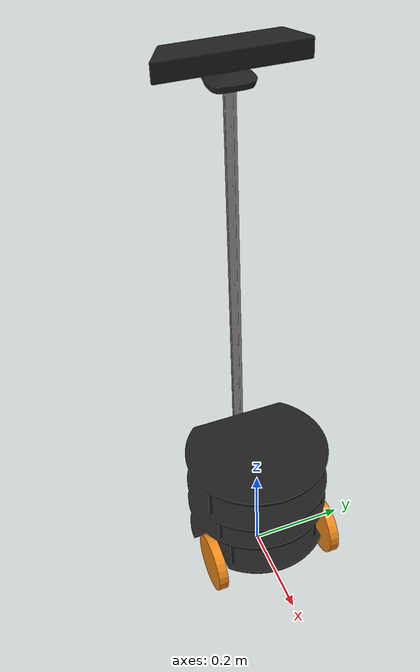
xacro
<?xml version="1.0"?>

<robot name="pi_robot" xmlns:xacro="http://ros.org/wiki/xacro">

   <!-- Define a number of dimensions using properties -->
   <property name="torso_offset_x" value="-0.13" />
   <property name="torso_offset_y" value="0.0" />
   <property name="torso_offset_z" value="0.088" />

   <property name="camera_offset_x" value="0.012" />
   <property name="camera_offset_y" value="0.0035" />
   <property name="camera_offset_z" value="0.919" />

   <!-- The following include files set up definitions of parts of the robot body -->
   <xacro:include filename="$(find rbx2_description)/urdf/materials.urdf.xacro" />
   <xacro:include filename="$(find rbx2_description)/urdf/pi_robot/pi_base.urdf.xacro" />
   <xacro:include filename="$(find rbx2_description)/urdf/pi_robot/pi_torso.urdf.xacro" />
   <xacro:include filename="$(find rbx2_description)/urdf/pi_robot/kinect.urdf.xacro" />

   <!-- Now we can start using the macros included above to define the actual robot -->

   <!-- Start with the base and wheels -->
   <base name="base" color="Black"/>

   <!-- Attach the torso -->
   <torso name="torso" parent="base" color="Grey">
      <origin xyz="${torso_offset_x} ${torso_offset_y} ${torso_offset_z}" rpy="0 0 0" />
   </torso>

   <!-- Attach the camera -->
   <camera name="camera" parent="torso" color="Black">
      <origin xyz="${camera_offset_x} ${camera_offset_y} ${camera_offset_z}" rpy="0 0 0" />
   </camera>

</robot>

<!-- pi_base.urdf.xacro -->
<robot name="base" xmlns:xacro="http://ros.org/wiki/xacro">

  <!-- Define a number of dimensions using properties -->
  <property name="wheel_length" value="0.02032" />
  <property name="wheel_radius" value="0.06191" />
  <property name="wheel_offset_x" value="0.07" />
  <property name="wheel_offset_y" value="0.13" />
  <property name="wheel_offset_z" value="-0.0035" />

  <property name="base_radius" value="0.152" />
  <property name="base_height" value="0.241" />

  <property name="base_mesh_scale" value="0.0254" />

  <property name="PI" value="3.1415" />

  <!-- define a wheel -->
  <macro name="wheel" params="suffix parent reflect color">
    <joint name="${parent}_${suffix}_wheel_joint" type="continuous">
      <axis xyz="0 0 1" />
      <limit effort="100" velocity="100"/>
      <safety_controller k_velocity="10" />
      <origin xyz="${wheel_offset_x} ${reflect*wheel_offset_y} ${wheel_offset_z}" rpy="${reflect*1.57} 0 0" />
      <parent link="${parent}_link"/>
      <child link="${parent}_${suffix}_wheel_link"/>
    </joint>
    <link name="${parent}_${suffix}_wheel_link">
      <visual>
        <origin xyz="0 0 0" rpy="0 0 0" />
        <geometry>
          <cylinder radius="${wheel_radius}" length="${wheel_length}"/>
        </geometry>
        <material name="${color}" />
      </visual>
    </link>
  </macro>

  <!-- The base xacro macro -->
  <macro name="base" params="name color">
    <link name="${name}_link">
      <visual>
        <origin xyz="0 0 0" rpy="0 0 ${PI/2}" />
        <geometry>
           <mesh filename="package://rbx2_description/meshes/pi_robot/pi_robot_base.stl" scale="${base_mesh_scale} ${base_mesh_scale} ${base_mesh_scale}" />
        </geometry>
        <material name="${color}" />
      </visual>
      <collision>
        <origin xyz="0 0 ${base_height/2}" rpy="0 0 0" />
        <geometry>
           <cylinder radius="${base_radius}" length="${base_height}"/>
        </geometry>
      </collision>
    </link>
  </macro>

  <link name="base_footprint">
      <visual>
        <origin xyz="0 0 0" rpy="0 0 0" />
        <geometry>
          <box size="0.05 0.05 0.001" />
        </geometry>
        <material name="TransparentGreen" />
      </visual>
  </link>

  <joint name="base_joint" type="fixed">
    <origin xyz="0 0 ${wheel_radius - wheel_offset_z}" rpy="0 0 0" />
    <parent link="base_footprint"/>
    <child link="base_link" />
  </joint>

   <!-- Add the drive wheels -->
   <wheel parent="base" suffix="l" reflect="1" color="Orange"/>
   <wheel parent="base" suffix="r" reflect="-1" color="Orange"/>

</robot>

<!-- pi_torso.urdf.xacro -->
<robot name="torso" xmlns:xacro="http://ros.org/wiki/xacro">

  <!-- Define a number of dimensions using properties -->
  <property name="torso_size_x" value="0.025" />
  <property name="torso_size_y" value="0.025" />
  <property name="torso_size_z" value="0.885" />

  <property name="torso_mesh_scale" value="0.0127" />

  <!-- Define the torso -->
  <macro name="torso" params="parent name color *origin">
    <joint name="${parent}_${name}_joint" type="fixed">
      <xacro:insert_block name="origin" />
      <parent link="${parent}_link"/>
      <child link="${name}_link"/>
    </joint>
    <link name="${name}_link">
      <visual>
        <origin xyz="0 0 0" rpy="0 0 0" />
        <geometry>
           <mesh filename="package://rbx2_description/meshes/pi_robot/t_slot.stl" scale="${torso_mesh_scale} ${torso_mesh_scale} ${torso_mesh_scale}" />
        </geometry>
        <material name="${color}" />
      </visual>
      <collision>
        <origin xyz="0 0 ${torso_size_z/2}" rpy="0 0 0" />
        <geometry>
          <box size="${torso_size_x} ${torso_size_y} ${torso_size_z}" />
        </geometry>
      </collision>
    </link>
  </macro>

</robot>

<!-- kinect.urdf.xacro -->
<robot name="kinect" xmlns:xacro="http://ros.org/wiki/xacro">

   <!-- Define a number of dimensions using properties -->
   <property name="kinect_size_x" value="0.07271" />
   <property name="kinect_size_y" value="0.27794" />
   <property name="kinect_size_z" value="0.070" />

   <property name="camera_mesh_scale" value="1.0" />

   <property name="PI" value="3.1415" />

   <!-- Define a camera link for a Kinect -->
   <macro name="camera" params="parent name color *origin">
      <joint name="${parent}_${name}_joint" type="fixed">
         <xacro:insert_block name="origin" />
         <parent link="${parent}_link"/>
         <child link="${name}_link"/>
      </joint>
      <link name="${name}_link">
         <visual>
            <origin xyz="0 0 0" rpy="0 0 ${PI/2}" />
            <geometry>
               <mesh filename="package://rbx2_description/meshes/kinect.dae" scale="${camera_mesh_scale} ${camera_mesh_scale} ${camera_mesh_scale}" />
            </geometry>
            <material name="${color}" />
         </visual>
         <collision>
           <origin xyz="0 0 0" rpy="0 0 0" />
           <geometry>
              <box size="${kinect_size_x} ${kinect_size_y} ${kinect_size_z}"/>
           </geometry>
         </collision>
      </link>

      <joint name="camera_depth_joint" type="fixed">
         <origin xyz="0 0.0125 0.015" rpy="0 0 0" />
          <parent link="camera_link" />
          <child link="camera_depth_frame" />
      </joint>

      <link name="camera_depth_frame">
      <inertial>
         <mass value="0.000001" />
         <origin xyz="0 0 0" />
         <inertia ixx="0.0001" ixy="0.0" ixz="0.0"
            iyy="0.0001" iyz="0.0"
            izz="0.0001" />
         </inertial>
      </link>

      <joint name="camera_depth_optical_joint" type="fixed">
         <origin xyz="0 0 0" rpy="${-PI/2} 0 ${-PI/2}" />
         <parent link="camera_depth_frame" />
         <child link="camera_depth_optical_frame" />
      </joint>

      <link name="camera_depth_optical_frame">
         <inertial>
            <mass value="0.000001" />
            <origin xyz="0 0 0" />
            <inertia ixx="0.0001" ixy="0.0" ixz="0.0"
               iyy="0.0001" iyz="0.0"
               izz="0.0001" />
         </inertial>
      </link>

      <joint name="camera_rgb_joint" type="fixed">
         <origin xyz="0 -0.0125 0.015" rpy="0 0 0" />
         <parent link="camera_link" />
         <child link="camera_rgb_frame" />
      </joint>

      <link name="camera_rgb_frame">
         <inertial>
         <mass value="0.000001" />
         <origin xyz="0 0 0" />
         <inertia ixx="0.0001" ixy="0.0" ixz="0.0"
            iyy="0.0001" iyz="0.0"
            izz="0.0001" />
         </inertial>
      </link>

      <joint name="camera_rgb_optical_joint" type="fixed">
         <origin xyz="0 0 0" rpy="${-PI/2} 0 ${-PI/2}" />
         <parent link="camera_rgb_frame" />
         <child link="camera_rgb_optical_frame" />
      </joint>

      <link name="camera_rgb_optical_frame">
         <inertial>
            <mass value="0.000001" />
            <origin xyz="0 0 0" />
            <inertia ixx="0.0001" ixy="0.0" ixz="0.0"
               iyy="0.0001" iyz="0.0"
               izz="0.0001" />
         </inertial>
      </link>

   </macro>

</robot>
